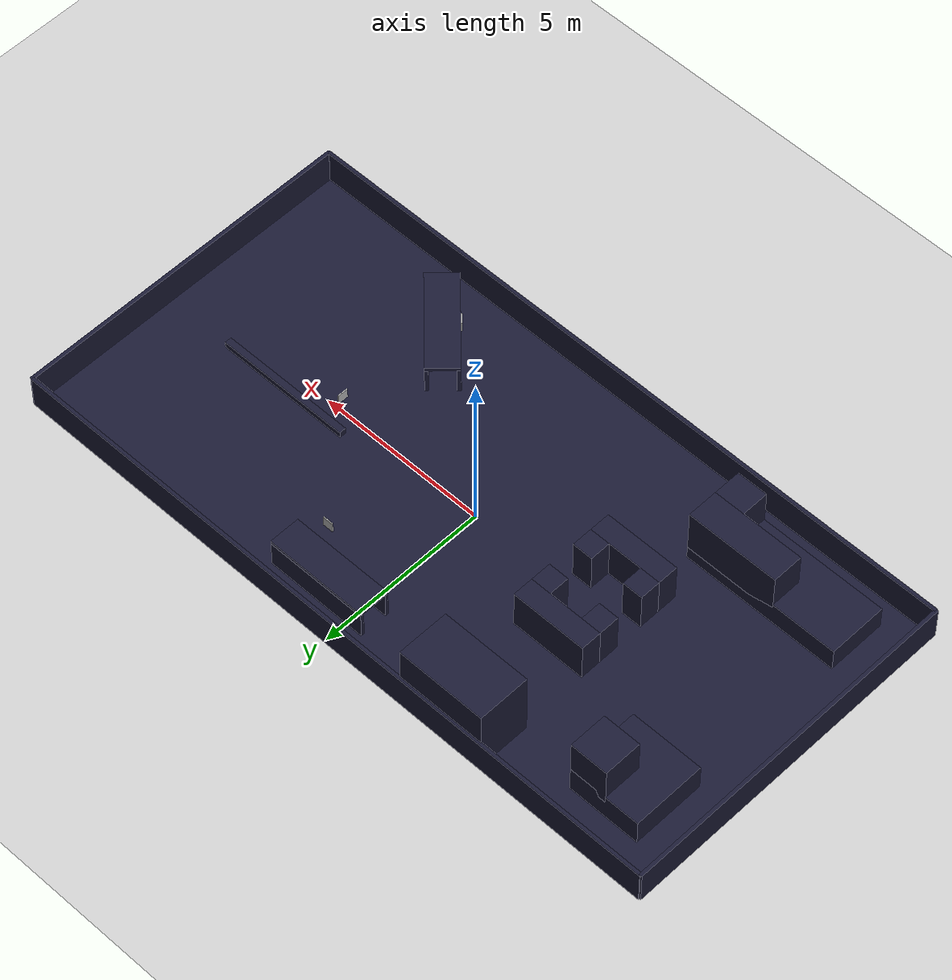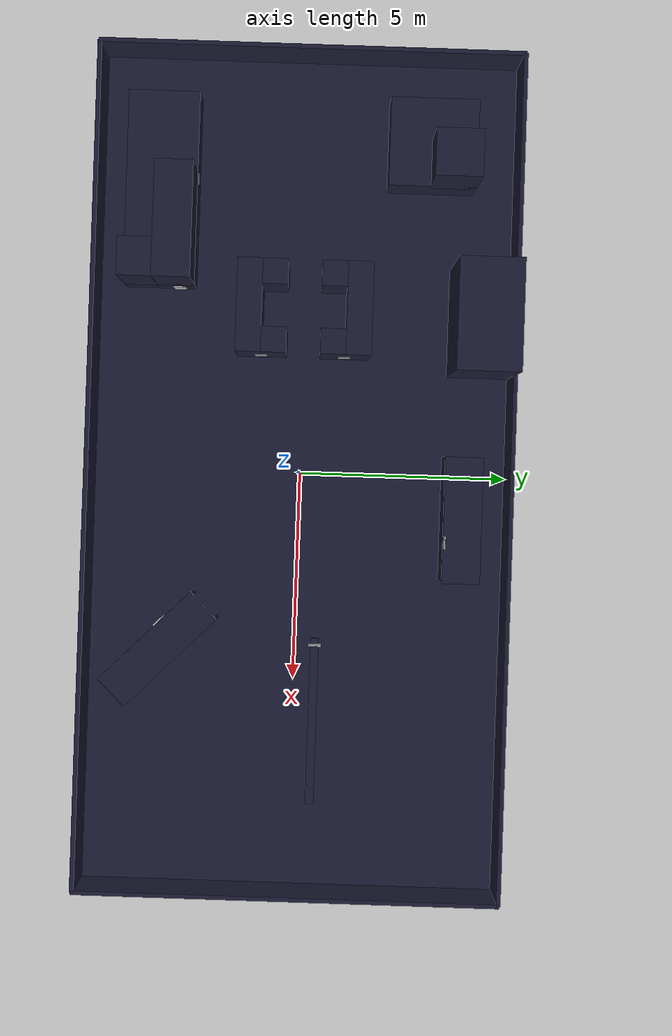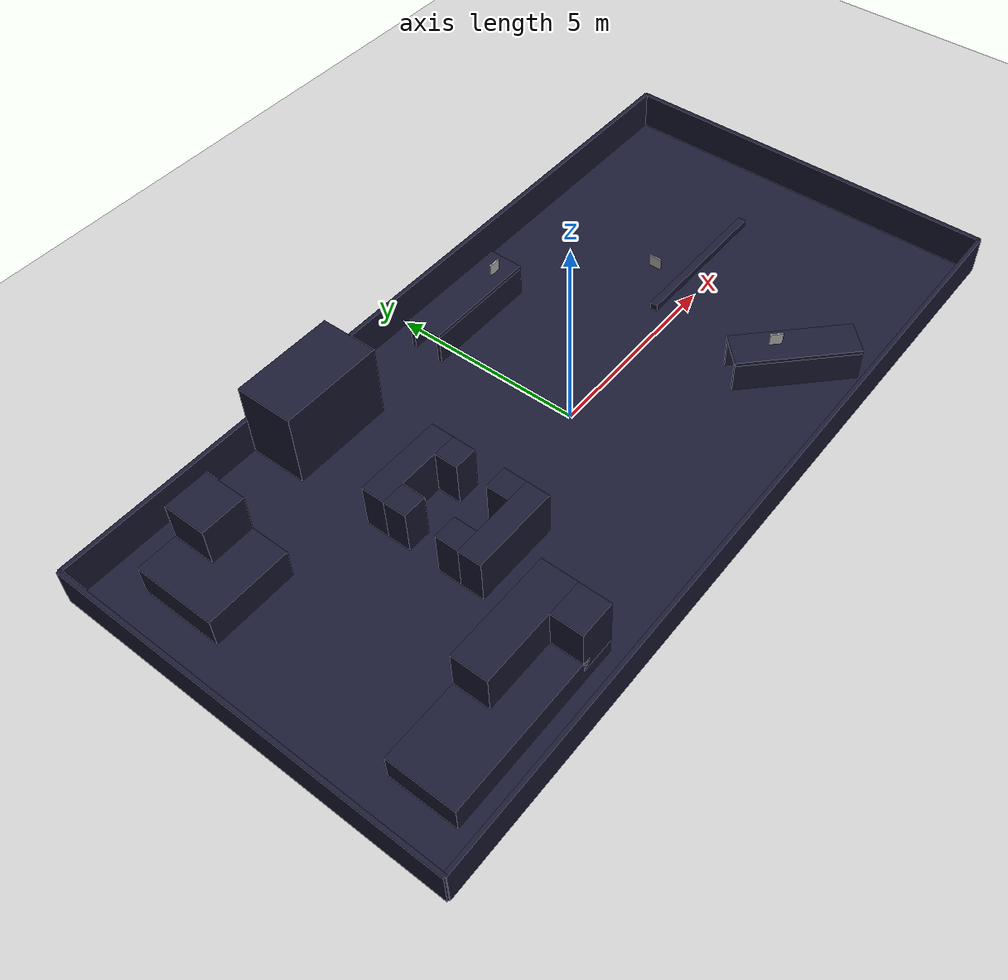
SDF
<?xml version="1.0" ?>
<sdf version="1.5">
  <world name="default">
    <physics type="ode">
        <ode>
            <solver>
                <iters>150</iters>
            </solver>
        </ode>
    </physics>
    <include>
      <uri>model://sun</uri>
    </include>

    <include>
      <uri>model://ground_plane</uri>
    </include>

    <model name="aruco">
      <pose>-7.2 3 1 3.1415926535897932384626433832795 0 0</pose>
      <include>
        <name>aruco</name>
        <uri>model://aruco</uri>
      </include>
    </model>

    <model name="aruco_1">
      <pose>-2.7 3.75 1 3.1415926535897932384626433832795 0 0</pose>
      <include>
        <name>aruco_1</name>
        <uri>model://aruco_1</uri>
      </include>
    </model>

   <model name="aruco_2">
      <pose>-2.8 1 1 3.1415926535 0 0</pose>
      <include>
        <name>aruco_2</name>
        <uri>model://aruco_2</uri>
      </include>
    </model>

    <model name="aruco_3">
      <pose>-2.8 -1 1 3.1415926535 0 0</pose>
      <include>
        <name>aruco_3</name>
        <uri>model://aruco_3</uri>
      </include>
    </model>

   <model name="aruco_4">
      <pose>-4.35 -3 1 3.1415926535897932384626433832795 0 0</pose>
      <include>
        <name>aruco_4</name>
        <uri>model://aruco_4</uri>
      </include>
    </model>

   <model name="aruco_5">
      <pose>3.95 0.5 1 0 0 0</pose>
      <include>
        <name>aruco_5</name>
        <uri>model://aruco_5</uri>
      </include>
    </model>

    <model name="aruco_6">
      <pose>1.5 3.4 1 0 0 1.5707963267948966192313216916398</pose>
      <include>
        <name>aruco_6</name>
        <uri>model://aruco_6</uri>
      </include>
    </model>

   <model name="aruco_7">
      <pose>3.5 -3.1 1 0 0 0.8</pose>
      <include>
        <name>aruco_7</name>
        <uri>model://aruco_7</uri>
      </include>
    </model>

    <model name="arena">
        <pose>0 0 0 0 0 0</pose>
        <static>true</static>
        <link name="link">
            <inertial>
                <mass>0.0</mass>
                <inertia>
                    <ixx>0.0</ixx>
                    <ixy>0.0</ixy>
                    <ixz>0.0</ixz>
                    <iyy>0.0</iyy>
                    <iyz>0.0</iyz>
                    <izz>0.0</izz>
                </inertia>
            </inertial>
            <collision name="collision">
                <geometry>
                    <box>
                        <size>20.05 10.05 0.005</size>
                    </box>
                </geometry>
            </collision>
            <visual name="visual">
                <geometry>
                    <box>
                        <size>20.05 10.05 0.005</size>
                    </box>
                </geometry>
                <material>
                    <ambient>0.0 0.9 0.0 1</ambient>
                    <diffuse>0.1 0.1 0.2 1</diffuse>
                    <specular>0 0 0 0</specular>
                    <emissive>0 0 0 1</emissive>
                </material>
            </visual>
        </link>
        <link name="link2">
            <pose>0 0 0.005 0 0 0</pose>
            <inertial>
                <mass>0.0</mass>
                <inertia>
                    <ixx>0.0</ixx>
                    <ixy>0.0</ixy>
                    <ixz>0.0</ixz>
                    <iyy>0.0</iyy>
                    <iyz>0.0</iyz>
                    <izz>0.0</izz>
                </inertia>
            </inertial>
            <collision name="collision">
                <geometry>
                    <box>
                        <size>20 10 0.005</size>
                    </box>
                </geometry>
            </collision>
            <visual name="visual">
                <geometry>
                    <box>
                        <size>20 10 0.005</size>
                    </box>
                </geometry>
                <material>
                    <ambient>0.9 0.9 0.9 1</ambient>
                    <diffuse>0.1 0.1 0.2 1</diffuse>
                    <specular>0 0 0 0</specular>
                    <emissive>0 0 0 1</emissive>
                </material>
            </visual>
        </link>
    </model>

<!-- Wall 1 (Top) -->
    <model name="wall1">
      <pose>0 5.025 0.5 0 0 0</pose>
      <static>true</static>
      <link name="link">
            <inertial>
                <mass>1000.0</mass>
                <inertia>
                    <ixx>0.0</ixx>
                    <ixy>0.0</ixy>
                    <ixz>0.0</ixz>
                    <iyy>0.0</iyy>
                    <iyz>0.0</iyz>
                    <izz>0.0</izz>
                </inertia>
            </inertial>
        <collision name="collision">
          <geometry>
            <box>
              <size>20.1 0.1 1</size>
            </box>
          </geometry>
        </collision>
        <visual name="visual">
          <geometry>
            <box>
              <size>20.1 0.1 1</size>
            </box>
          </geometry>
          <material>
              <ambient>0.9 0.3 0.9 1</ambient>
              <diffuse>0.1 0.1 0.2 1</diffuse>
              <specular>0 0 0 0</specular>
              <emissive>0 0 0 1</emissive>
          </material>
        </visual>
      </link>
    </model>

    <!-- Wall 2 (Bottom) -->
    <model name="wall2">
      <pose>0 -5.025 0.5 0 0 0</pose>
      <static>true</static>
      <link name="link">
            <inertial>
                <mass>1000.0</mass>
                <inertia>
                    <ixx>0.0</ixx>
                    <ixy>0.0</ixy>
                    <ixz>0.0</ixz>
                    <iyy>0.0</iyy>
                    <iyz>0.0</iyz>
                    <izz>0.0</izz>
                </inertia>
            </inertial>
        <collision name="collision">
          <geometry>
            <box>
              <size>20.1 0.1 1</size>
            </box>
          </geometry>
        </collision>
        <visual name="visual">
          <geometry>
            <box>
              <size>20.1 0.1 1</size>
            </box>
          </geometry>
          <material>
            <ambient>0.9 0.3 0.9 1</ambient>
            <diffuse>0.1 0.1 0.2 1</diffuse>
            <specular>0 0 0 0</specular>
            <emissive>0 0 0 1</emissive>
          </material>
        </visual>
      </link>
    </model>

    <!-- Wall 3 (Left) -->
    <model name="wall3">
      <pose>-10.05 0 0.5 0 0 0</pose>
      <static>true</static>
      <link name="link">
            <inertial>
                <mass>1000.0</mass>
                <inertia>
                    <ixx>0.0</ixx>
                    <ixy>0.0</ixy>
                    <ixz>0.0</ixz>
                    <iyy>0.0</iyy>
                    <iyz>0.0</iyz>
                    <izz>0.0</izz>
                </inertia>
            </inertial>
        <collision name="collision">
          <geometry>
            <box>
              <size>0.1 10.1 1</size>
            </box>
          </geometry>
        </collision>
        <visual name="visual">
          <geometry>
            <box>
              <size>0.1 10.1 1</size>
            </box>
          </geometry>
          <material>
            <ambient>0.9 0.3 0.9 1</ambient>
        <diffuse>0.1 0.1 0.2 1</diffuse>
            <specular>0 0 0 0</specular>
            <emissive>0 0 0 1</emissive>
          </material>
        </visual>
      </link>
    </model>

    <!-- Wall 4 (Right) -->
    <model name="wall4">
      <pose>10.05 0 0.5 0 0 0</pose>
      <static>true</static>
      <link name="link">
        <inertial>
                <mass>1000.0</mass>
                <inertia>
                    <ixx>0.0</ixx>
                    <ixy>0.0</ixy>
                    <ixz>0.0</ixz>
                    <iyy>0.0</iyy>
                    <iyz>0.0</iyz>
                    <izz>0.0</izz>
                </inertia>
            </inertial>
        <collision name="collision">
          <geometry>
            <box>
              <size>0.1 10.1 1</size>
            </box>
          </geometry>
        </collision>
        <visual name="visual">
          <geometry>
            <box>
              <size>0.1 10.1 1</size>
            </box>
          </geometry>
          <material>
            <ambient>0.9 0.3 0.9 1</ambient>
            <diffuse>0.1 0.1 0.2 1</diffuse>
            <specular>0 0 0 0</specular>
            <emissive>0 0 0 1</emissive>
          </material>
        </visual>
      </link>
    </model>

    <model name="building_06">
        <pose>-7.95 2.95 0.40 0 0 0</pose>
        <static>true</static>
        <link name="link">
            <inertial>
                <mass>1000.0</mass>
                <inertia>
                    <ixx>0.0</ixx>
                    <ixy>0.0</ixy>
                    <ixz>0.0</ixz>
                    <iyy>0.0</iyy>
                    <iyz>0.0</iyz>
                    <izz>0.0</izz>
                </inertia>
            </inertial>
            <collision name="collision">
                <geometry>
                    <box>
                        <size>2.1 2.1 0.80</size>
                    </box>
                </geometry>
            </collision>
            <visual name="visual">
                <geometry>
                    <box>
                        <size>2.1 2.1 0.80</size>
                    </box>
                </geometry>
                <material>
                    <ambient>0.3 0.0 0.7 1</ambient>
                    <diffuse>0.1 0.1 0.2 1</diffuse>
                    <specular>0 0 0 0</specular>
                    <emissive>0 0 0 1</emissive>
                </material>
            </visual>
        </link>
        <link name="link2">
            <pose>0.5 0.5 0.8 0 0 0</pose>
            <inertial>
                <mass>1000.0</mass>
                <inertia>
                    <ixx>0.0</ixx>
                    <ixy>0.0</ixy>
                    <ixz>0.0</ixz>
                    <iyy>0.0</iyy>
                    <iyz>0.0</iyz>
                    <izz>0.0</izz>
                </inertia>
            </inertial>
            <collision name="collision">
                <geometry>
                    <box>
                        <size>1.10 1.10 1.2</size>
                    </box>
                </geometry>
            </collision>
            <visual name="visual">
                <geometry>
                    <box>
                        <size>1.10 1.10 1.2</size>
                    </box>
                </geometry>
                <material>
                    <ambient>0.3 0.0 0.7 1</ambient>
                    <diffuse>0.1 0.1 0.2 1</diffuse>
                    <specular>0 0 0 0</specular>
                    <emissive>0 0 0 1</emissive>
                </material>
            </visual>
        </link>
    </model>

    <model name="building_09">
        <pose>-3.75 4.25 1.00 0 0 0</pose>
        <static>true</static>
        <link name="link">
            <inertial>
                <mass>1000.0</mass>
                <inertia>
                    <ixx>0.0</ixx>
                    <ixy>0.0</ixy>
                    <ixz>0.0</ixz>
                    <iyy>0.0</iyy>
                    <iyz>0.0</iyz>
                    <izz>0.0</izz>
                </inertia>
            </inertial>
            <collision name="collision">
                <geometry>
                    <box>
                        <size>2.6 1.5 2.0</size>
                    </box>
                </geometry>
            </collision>
            <visual name="visual">
                <geometry>
                    <box>
                        <size>2.6 1.5 2.0</size>
                    </box>
                </geometry>
                <material>
                    <ambient>0.5 0.5 0.1 1</ambient>
                    <diffuse>0.1 0.1 0.2 1</diffuse>
                    <specular>0 0 0 0</specular>
                    <emissive>0 0 0 1</emissive>
                </material>
            </visual>
        </link>
    </model>

    <model name="building_03a">
        <pose>-3.9 1.3 0.60 0 0 0</pose>
        <static>true</static>
        <link name="link">
            <inertial>
                <mass>1000.0</mass>
                <inertia>
                    <ixx>0.0</ixx>
                    <ixy>0.0</ixy>
                    <ixz>0.0</ixz>
                    <iyy>0.0</iyy>
                    <iyz>0.0</iyz>
                    <izz>0.0</izz>
                </inertia>
            </inertial>
            <collision name="collision">
                <geometry>
                    <box>
                        <size>2.20 0.6 1.20</size>
                    </box>
                </geometry>
            </collision>
            <visual name="visual">
                <geometry>
                    <box>
                        <size>2.20 0.6 1.20</size>
                    </box>
                </geometry>
                <material>
                    <ambient>0.3 0.0 0.7 1</ambient>
                    <diffuse>0.1 0.1 0.2 1</diffuse>
                    <specular>0 0 0 0</specular>
                    <emissive>0 0 0 1</emissive>
                </material>
            </visual>
        </link>
        <link name="link2">
            <pose>0.8 -0.6 0 0 0 0</pose>
            <inertial>
                <mass>1000.0</mass>
                <inertia>
                    <ixx>0.0</ixx>
                    <ixy>0.0</ixy>
                    <ixz>0.0</ixz>
                    <iyy>0.0</iyy>
                    <iyz>0.0</iyz>
                    <izz>0.0</izz>
                </inertia>
            </inertial>
            <collision name="collision">
                <geometry>
                    <box>
                        <size>.6 0.6 1.20</size>
                    </box>
                </geometry>
            </collision>
            <visual name="visual">
                <geometry>
                    <box>
                        <size>.6 0.6 1.20</size>
                    </box>
                </geometry>
                <material>
                    <ambient>0.3 0.0 0.7 1</ambient>
                    <diffuse>0.1 0.1 0.2 1</diffuse>
                    <specular>0 0 0 0</specular>
                    <emissive>0 0 0 1</emissive>
                </material>
            </visual>
        </link>
        <link name="link3">
            <pose>-0.8 -0.6 0 0 0 0</pose>
            <inertial>
                <mass>1000.0</mass>
                <inertia>
                    <ixx>0.0</ixx>
                    <ixy>0.0</ixy>
                    <ixz>0.0</ixz>
                    <iyy>0.0</iyy>
                    <iyz>0.0</iyz>
                    <izz>0.0</izz>
                </inertia>
            </inertial>
            <collision name="collision">
                <geometry>
                    <box>
                        <size>.6 0.6 1.20</size>
                    </box>
                </geometry>
            </collision>
            <visual name="visual">
                <geometry>
                    <box>
                        <size>.6 0.6 1.20</size>
                    </box>
                </geometry>
                <material>
                    <ambient>0.3 0.0 0.7 1</ambient>
                    <diffuse>0.1 0.1 0.2 1</diffuse>
                    <specular>0 0 0 0</specular>
                    <emissive>0 0 0 1</emissive>
                </material>
            </visual>
        </link>
    </model>

    <model name="building_03b">
        <pose>-3.9 -1.3 0.60 0 0 0</pose>
        <static>true</static>
        <link name="link">
            <inertial>
                <mass>1000.0</mass>
                <inertia>
                    <ixx>0.0</ixx>
                    <ixy>0.0</ixy>
                    <ixz>0.0</ixz>
                    <iyy>0.0</iyy>
                    <iyz>0.0</iyz>
                    <izz>0.0</izz>
                </inertia>
            </inertial>
            <collision name="collision">
                <geometry>
                    <box>
                        <size>2.20 0.6 1.20</size>
                    </box>
                </geometry>
            </collision>
            <visual name="visual">
                <geometry>
                    <box>
                        <size>2.20 0.6 1.20</size>
                    </box>
                </geometry>
                <material>
                    <ambient>0.3 0.0 0.7 1</ambient>
                    <diffuse>0.1 0.1 0.2 1</diffuse>
                    <specular>0 0 0 0</specular>
                    <emissive>0 0 0 1</emissive>
                </material>
            </visual>
        </link>
        <link name="link2">
            <pose>0.8 0.6 0 0 0 0</pose>
            <inertial>
                <mass>1000.0</mass>
                <inertia>
                    <ixx>0.0</ixx>
                    <ixy>0.0</ixy>
                    <ixz>0.0</ixz>
                    <iyy>0.0</iyy>
                    <iyz>0.0</iyz>
                    <izz>0.0</izz>
                </inertia>
            </inertial>
            <collision name="collision">
                <geometry>
                    <box>
                        <size>.6 0.6 1.20</size>
                    </box>
                </geometry>
            </collision>
            <visual name="visual">
                <geometry>
                    <box>
                        <size>.6 0.6 1.20</size>
                    </box>
                </geometry>
                <material>
                    <ambient>0.3 0.0 0.7 1</ambient>
                    <diffuse>0.1 0.1 0.2 1</diffuse>
                    <specular>0 0 0 0</specular>
                    <emissive>0 0 0 1</emissive>
                </material>
            </visual>
        </link>
        <link name="link3">
            <pose>-0.8 0.6 0 0 0 0</pose>
            <inertial>
                <mass>1000.0</mass>
                <inertia>
                    <ixx>0.0</ixx>
                    <ixy>0.0</ixy>
                    <ixz>0.0</ixz>
                    <iyy>0.0</iyy>
                    <iyz>0.0</iyz>
                    <izz>0.0</izz>
                </inertia>
            </inertial>
            <collision name="collision">
                <geometry>
                    <box>
                        <size>.6 0.6 1.20</size>
                    </box>
                </geometry>
            </collision>
            <visual name="visual">
                <geometry>
                    <box>
                        <size>.6 0.6 1.20</size>
                    </box>
                </geometry>
                <material>
                    <ambient>0.3 0.0 0.7 1</ambient>
                    <diffuse>0.1 0.1 0.2 1</diffuse>
                    <specular>0 0 0 0</specular>
                    <emissive>0 0 0 1</emissive>
                </material>
            </visual>
        </link>
    </model>

    <model name="building_10">
        <pose>-6.7 -3.5 0.35 0 0 0</pose>
        <static>true</static>
        <link name="link">
            <inertial>
                <mass>1000.0</mass>
                <inertia>
                    <ixx>0.0</ixx>
                    <ixy>0.0</ixy>
                    <ixz>0.0</ixz>
                    <iyy>0.0</iyy>
                    <iyz>0.0</iyz>
                    <izz>0.0</izz>
                </inertia>
            </inertial>
            <collision name="collision">
                <geometry>
                    <box>
                        <size>4.6 1.7 0.70</size>
                    </box>
                </geometry>
            </collision>
            <visual name="visual">
                <geometry>
                    <box>
                        <size>4.6 1.7 0.70</size>
                    </box>
                </geometry>
                <material>
                    <ambient>0.8 0.8 0.3 1</ambient>
                    <diffuse>0.1 0.1 0.2 1</diffuse>
                    <specular>0 0 0 0</specular>
                    <emissive>0 0 0 1</emissive>
                </material>
            </visual>
        </link>
        <link name="link2">
            <pose>0.95 0.4 0.7 0 0 0</pose>
            <inertial>
                <mass>1000.0</mass>
                <inertia>
                    <ixx>0.0</ixx>
                    <ixy>0.0</ixy>
                    <ixz>0.0</ixz>
                    <iyy>0.0</iyy>
                    <iyz>0.0</iyz>
                    <izz>0.0</izz>
                </inertia>
            </inertial>
            <collision name="collision">
                <geometry>
                    <box>
                        <size>2.70 0.90 1.3</size>
                    </box>
                </geometry>
            </collision>
            <visual name="visual">
                <geometry>
                    <box>
                        <size>2.70 0.90 1.3</size>
                    </box>
                </geometry>
                <material>
                    <ambient>0.8 0.8 0.3 1</ambient>
                    <diffuse>0.1 0.1 0.2 1</diffuse>
                    <specular>0 0 0 0</specular>
                    <emissive>0 0 0 1</emissive>
                </material>
            </visual>
        </link>
        <link name="link3">
            <pose>1.85 -0.45 0.7 0 0 0</pose>
            <inertial>
                <mass>1000.0</mass>
                <inertia>
                    <ixx>0.0</ixx>
                    <ixy>0.0</ixy>
                    <ixz>0.0</ixz>
                    <iyy>0.0</iyy>
                    <iyz>0.0</iyz>
                    <izz>0.0</izz>
                </inertia>
            </inertial>
            <collision name="collision">
                <geometry>
                    <box>
                        <size>0.90 0.80 1.3</size>
                    </box>
                </geometry>
            </collision>
            <visual name="visual">
                <geometry>
                    <box>
                        <size>0.90 0.80 1.3</size>
                    </box>
                </geometry>
                <material>
                    <ambient>0.8 0.8 0.3 1</ambient>
                    <diffuse>0.1 0.1 0.2 1</diffuse>
                    <specular>0 0 0 0</specular>
                    <emissive>0 0 0 1</emissive>
                </material>
            </visual>
        </link>
    </model>

    <model name="unknown_obs">
        <pose>6 0.5 0.1 0 0 0</pose>
        <static>true</static>
        <link name="link">
            <inertial>
                <mass>1000.0</mass>
                <inertia>
                    <ixx>0.0</ixx>
                    <ixy>0.0</ixy>
                    <ixz>0.0</ixz>
                    <iyy>0.0</iyy>
                    <iyz>0.0</iyz>
                    <izz>0.0</izz>
                </inertia>
            </inertial>
            <collision name="collision">
                <geometry>
                    <box>
                        <size>4 0.2 0.20</size>
                    </box>
                </geometry>
            </collision>
            <visual name="visual">
                <geometry>
                    <box>
                        <size>4 0.2 0.20</size>
                    </box>
                </geometry>
                <material>
                    <ambient>0.5 0.5 0.1 1</ambient>
                    <diffuse>0.1 0.1 0.2 1</diffuse>
                    <specular>0 0 0 0</specular>
                    <emissive>0 0 0 1</emissive>
                </material>
            </visual>
        </link>
    </model>

    <model name="tunnel_00">
        <pose>4 -3.5 0.4 0 0 -0.7853975</pose>
        <static>true</static>
        <link name="link">
            <inertial>
                <mass>1000.0</mass>
                <inertia>
                    <ixx>0.0</ixx>
                    <ixy>0.0</ixy>
                    <ixz>0.0</ixz>
                    <iyy>0.0</iyy>
                    <iyz>0.0</iyz>
                    <izz>0.0</izz>
                </inertia>
            </inertial>
            <collision name="collision">
                <geometry>
                    <box>
                        <size>3 0.1 0.80</size>
                    </box>
                </geometry>
            </collision>
            <visual name="visual">
                <geometry>
                    <box>
                        <size>3 0.1 0.80</size>
                    </box>
                </geometry>
                <material>
                    <ambient>0.9 0.3 0.9 1</ambient>
                    <diffuse>0.1 0.1 0.2 1</diffuse>
                    <specular>0 0 0 0</specular>
                    <emissive>0 0 0 1</emissive>
                </material>
            </visual>
        </link>
        <link name="link1">
            <pose>0 0.8 0 0 0 0</pose>
            <inertial>
                <mass>1000.0</mass>
                <inertia>
                    <ixx>0.0</ixx>
                    <ixy>0.0</ixy>
                    <ixz>0.0</ixz>
                    <iyy>0.0</iyy>
                    <iyz>0.0</iyz>
                    <izz>0.0</izz>
                </inertia>
            </inertial>
            <collision name="collision">
                <geometry>
                    <box>
                        <size>3 0.1 0.80</size>
                    </box>
                </geometry>
            </collision>
            <visual name="visual">
                <geometry>
                    <box>
                        <size>3 0.1 0.80</size>
                    </box>
                </geometry>
                <material>
                    <ambient>0.9 0.3 0.9 1</ambient>
                    <diffuse>0.1 0.1 0.2 1</diffuse>
                    <specular>0 0 0 0</specular>
                    <emissive>0 0 0 1</emissive>
                </material>
            </visual>
        </link>
        <link name="link2">
            <pose>0 0.4 0.45 0 0 0</pose>
            <inertial>
                <mass>1000.0</mass>
                <inertia>
                    <ixx>0.0</ixx>
                    <ixy>0.0</ixy>
                    <ixz>0.0</ixz>
                    <iyy>0.0</iyy>
                    <iyz>0.0</iyz>
                    <izz>0.0</izz>
                </inertia>
            </inertial>
            <collision name="collision">
                <geometry>
                    <box>
                        <size>3 0.9 0.10</size>
                    </box>
                </geometry>
            </collision>
            <visual name="visual">
                <geometry>
                    <box>
                        <size>3 0.9 0.10</size>
                    </box>
                </geometry>
                <material>
                    <ambient>0.9 0.3 0.9 1</ambient>
                    <diffuse>0.1 0.1 0.2 1</diffuse>
                    <specular>0 0 0 0</specular>
                    <emissive>0 0 0 1</emissive>
                </material>
            </visual>
        </link>
    </model>

    <model name="tunnel_01">
        <pose>1 3.5 0.4 0 0 0</pose>
        <static>true</static>
        <link name="link">
            <inertial>
                <mass>1000.0</mass>
                <inertia>
                    <ixx>0.0</ixx>
                    <ixy>0.0</ixy>
                    <ixz>0.0</ixz>
                    <iyy>0.0</iyy>
                    <iyz>0.0</iyz>
                    <izz>0.0</izz>
                </inertia>
            </inertial>
            <collision name="collision">
                <geometry>
                    <box>
                        <size>3 0.1 0.80</size>
                    </box>
                </geometry>
            </collision>
            <visual name="visual">
                <geometry>
                    <box>
                        <size>3 0.1 0.80</size>
                    </box>
                </geometry>
                <material>
                    <ambient>0.9 0.3 0.9 1</ambient>
                    <diffuse>0.1 0.1 0.2 1</diffuse>
                    <specular>0 0 0 0</specular>
                    <emissive>0 0 0 1</emissive>
                </material>
            </visual>
        </link>
        <link name="link1">
            <pose>0 0.8 0 0 0 0</pose>
            <inertial>
                <mass>1000.0</mass>
                <inertia>
                    <ixx>0.0</ixx>
                    <ixy>0.0</ixy>
                    <ixz>0.0</ixz>
                    <iyy>0.0</iyy>
                    <iyz>0.0</iyz>
                    <izz>0.0</izz>
                </inertia>
            </inertial>
            <collision name="collision">
                <geometry>
                    <box>
                        <size>3 0.1 0.80</size>
                    </box>
                </geometry>
            </collision>
            <visual name="visual">
                <geometry>
                    <box>
                        <size>3 0.1 0.80</size>
                    </box>
                </geometry>
                <material>
                    <ambient>0.9 0.3 0.9 1</ambient>
                    <diffuse>0.1 0.1 0.2 1</diffuse>
                    <specular>0 0 0 0</specular>
                    <emissive>0 0 0 1</emissive>
                </material>
            </visual>
        </link>
        <link name="link2">
            <pose>0 0.4 0.45 0 0 0</pose>
            <inertial>
                <mass>1000.0</mass>
                <inertia>
                    <ixx>0.0</ixx>
                    <ixy>0.0</ixy>
                    <ixz>0.0</ixz>
                    <iyy>0.0</iyy>
                    <iyz>0.0</iyz>
                    <izz>0.0</izz>
                </inertia>
            </inertial>
            <collision name="collision">
                <geometry>
                    <box>
                        <size>3 0.9 0.10</size>
                    </box>
                </geometry>
            </collision>
            <visual name="visual">
                <geometry>
                    <box>
                        <size>3 0.9 0.10</size>
                    </box>
                </geometry>
                <material>
                    <ambient>0.9 0.3 0.9 1</ambient>
                    <diffuse>0.1 0.1 0.2 1</diffuse>
                    <specular>0 0 0 0</specular>
                    <emissive>0 0 0 1</emissive>
                </material>
            </visual>
        </link>
    </model>

  </world>
</sdf>

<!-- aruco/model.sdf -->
<sdf version='1.6'>
  <model name='aruco'>
    <pose>0 0 0.6 0 1.56 0</pose>
    <link name='link'>
      <visual name='visual'>
        <geometry>
          <box>
            <size>0.3 0.3 0.03</size>
          </box>
        </geometry>
        <material>
          <script>
            <uri>model://aruco/materials/scripts</uri>
            <uri>model://aruco/materials/textures</uri>
           <name>arucoTexture</name>
          </script>
        </material>
      </visual>
      <collision name='collision'>
        <geometry>
          <box>
            <size>0.3 0.3 0.03</size>
          </box>
        </geometry>
      </collision>
    </link>
  </model>
</sdf>

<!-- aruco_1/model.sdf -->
<sdf version='1.6'>
  <model name='aruco_1'>
    <pose>0 0 0.6 0 1.56 0</pose>
    <link name='link'>
      <visual name='visual'>
        <geometry>
          <box>
            <size>0.3 0.3 0.03</size>
          </box>
        </geometry>
        <material>
          <script>
            <uri>model://aruco_1/materials/scripts</uri>
            <uri>model://aruco_1/materials/textures</uri>
           <name>arucoTexture_1</name>
          </script>
        </material>
      </visual>
      <collision name='collision'>
        <geometry>
          <box>
            <size>0.3 0.3 0.03</size>
          </box>
        </geometry>
      </collision>
    </link>
  </model>
</sdf>

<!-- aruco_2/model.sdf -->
<sdf version='1.6'>
  <model name='aruco_2'>
    <pose>0 0 0.6 0 1.56 0</pose>
    <link name='link'>
      <visual name='visual'>
        <geometry>
          <box>
            <size>0.3 0.3 0.03</size>
          </box>
        </geometry>
        <material>
          <script>
            <uri>model://aruco_2/materials/scripts</uri>
            <uri>model://aruco_2/materials/textures</uri>
           <name>arucoTexture_2</name>
          </script>
        </material>
      </visual>
      <collision name='collision'>
        <geometry>
          <box>
            <size>0.3 0.3 0.03</size>
          </box>
        </geometry>
      </collision>
    </link>
  </model>
</sdf>

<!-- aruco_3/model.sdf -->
<sdf version='1.6'>
  <model name='aruco_3'>
    <pose>0 0 0.6 0 1.56 0</pose>
    <link name='link'>
      <visual name='visual'>
        <geometry>
          <box>
            <size>0.3 0.3 0.03</size>
          </box>
        </geometry>
        <material>
          <script>
            <uri>model://aruco_3/materials/scripts</uri>
            <uri>model://aruco_3/materials/textures</uri>
           <name>arucoTexture_3</name>
          </script>
        </material>
      </visual>
      <collision name='collision'>
        <geometry>
          <box>
            <size>0.3 0.3 0.03</size>
          </box>
        </geometry>
      </collision>
    </link>
  </model>
</sdf>

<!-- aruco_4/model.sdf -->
<sdf version='1.6'>
  <model name='aruco_4'>
    <pose>0 0 0.6 0 1.56 0</pose>
    <link name='link'>
      <visual name='visual'>
        <geometry>
          <box>
            <size>0.3 0.3 0.03</size>
          </box>
        </geometry>
        <material>
          <script>
            <uri>model://aruco_4/materials/scripts</uri>
            <uri>model://aruco_4/materials/textures</uri>
           <name>arucoTexture_4</name>
          </script>
        </material>
      </visual>
      <collision name='collision'>
        <geometry>
          <box>
            <size>0.3 0.3 0.03</size>
          </box>
        </geometry>
      </collision>
    </link>
  </model>
</sdf>

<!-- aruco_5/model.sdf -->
<sdf version='1.6'>
  <model name='aruco_5'>
    <pose>0 0 0.6 0 1.56 0</pose>
    <link name='link'>
      <visual name='visual'>
        <geometry>
          <box>
            <size>0.3 0.3 0.03</size>
          </box>
        </geometry>
        <material>
          <script>
            <uri>model://aruco_5/materials/scripts</uri>
            <uri>model://aruco_5/materials/textures</uri>
           <name>arucoTexture_5</name>
          </script>
        </material>
      </visual>
      <collision name='collision'>
        <geometry>
          <box>
            <size>0.3 0.3 0.03</size>
          </box>
        </geometry>
      </collision>
    </link>
  </model>
</sdf>

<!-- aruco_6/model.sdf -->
<sdf version='1.6'>
  <model name='aruco_6'>
    <pose>0 0 0.6 0 1.56 0</pose>
    <link name='link'>
      <visual name='visual'>
        <geometry>
          <box>
            <size>0.3 0.3 0.03</size>
          </box>
        </geometry>
        <material>
          <script>
            <uri>model://aruco_6/materials/scripts</uri>
            <uri>model://aruco_6/materials/textures</uri>
           <name>arucoTexture_6</name>
          </script>
        </material>
      </visual>
      <collision name='collision'>
        <geometry>
          <box>
            <size>0.3 0.3 0.03</size>
          </box>
        </geometry>
      </collision>
    </link>
  </model>
</sdf>

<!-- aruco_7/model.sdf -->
<sdf version='1.6'>
  <model name='aruco_7'>
    <pose>0 0 0.6 0 1.56 0</pose>
    <link name='link'>
      <visual name='visual'>
        <geometry>
          <box>
            <size>0.3 0.3 0.03</size>
          </box>
        </geometry>
        <material>
          <script>
            <uri>model://aruco_7/materials/scripts</uri>
            <uri>model://aruco_7/materials/textures</uri>
           <name>arucoTexture_7</name>
          </script>
        </material>
      </visual>
      <collision name='collision'>
        <geometry>
          <box>
            <size>0.3 0.3 0.03</size>
          </box>
        </geometry>
      </collision>
    </link>
  </model>
</sdf>
